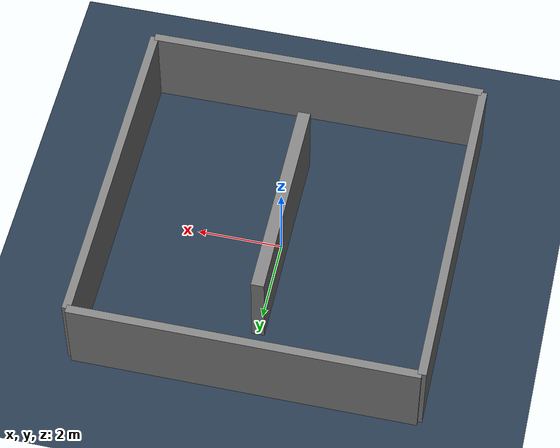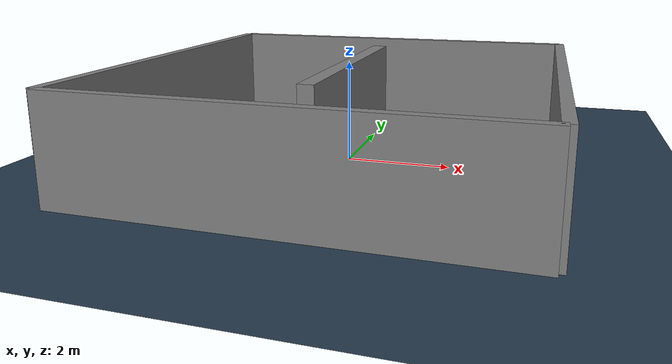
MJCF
<mujoco model="walled_room_with_divider">
  <asset>
    <texture name="grid" type="2d" builtin="checker" rgb1=".2 .3 .4" rgb2=".1 .15 .2" width="300" height="300"/>
    <material name="grid" texture="grid" texrepeat="8 8" reflectance=".2"/>
  </asset>
  <worldbody>
    <light pos="0 0 4" dir="0 0 -1" diffuse=".8 .8 .8"/>
    <geom name="floor" type="plane" size="8 8 .05" material="grid"/>
    <geom name="wall_n" type="box" pos="0  4 1" size="4 .1 1"/>
    <geom name="wall_s" type="box" pos="0 -4 1" size="4 .1 1"/>
    <geom name="wall_e" type="box" pos=" 4 0 1" size=".1 4 1"/>
    <geom name="wall_w" type="box" pos="-4 0 1" size=".1 4 1"/>
    <geom name="divider" type="box" pos="0 0 1" size=".15 2.5 1"/>
  </worldbody>
</mujoco>
